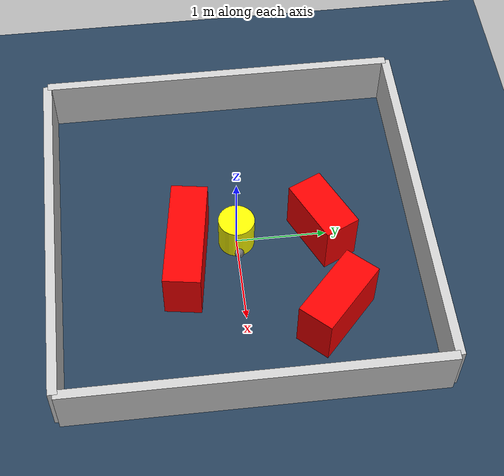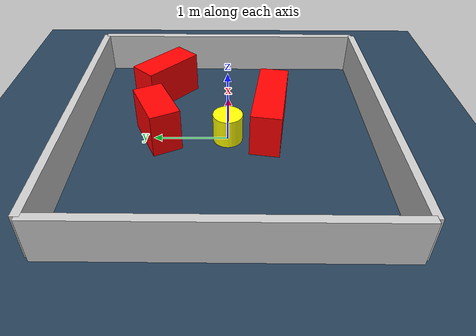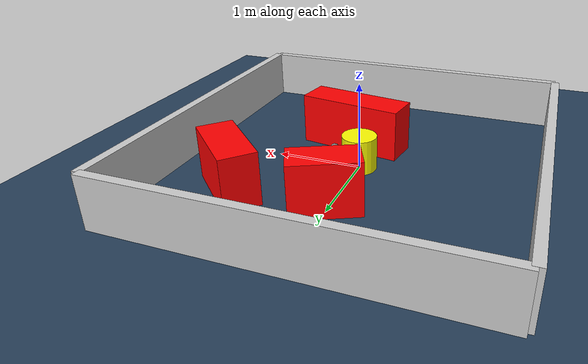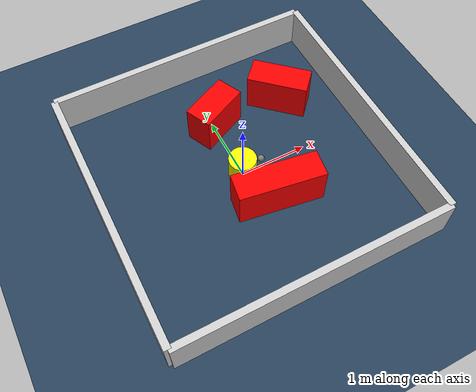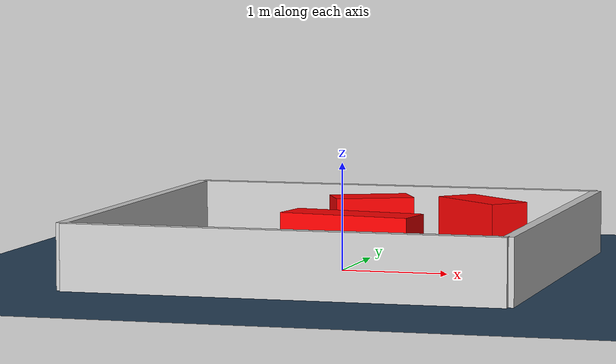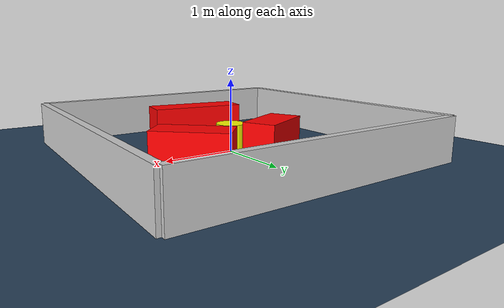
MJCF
<?xml version="1.0" ?>
<mujoco model="generated_environment">
  <option timestep="0.01" integrator="RK4" cone="elliptic"/>
  <default>
    <geom density="1"/>
  </default>
  <asset>
    <texture builtin="gradient" height="3072" rgb1="0.3 0.5 0.7" rgb2="0 0 0" type="skybox" width="512"/>
    <texture builtin="checker" height="300" mark="edge" markrgb="0.8 0.8 0.8" name="groundplane" rgb1="0.2 0.3 0.4" rgb2="0.1 0.2 0.3" type="2d" width="300"/>
    <material name="groundplane" reflectance="0.2" texrepeat="5 5" texture="groundplane" texuniform="true"/>
    <material name="robot" rgba="0.0 1.0 0.0 1"/>
  </asset>
  <worldbody>
    <light dir="0 0 -1" directional="true" pos="0 0 1.5"/>
    <geom condim="4" friction="1.0 0.005 0.001" material="groundplane" name="floor" size="0 0 0.05" type="plane"/>
    <body name="walls">
      <geom name="wall_1" condim="4" pos="-2.0 0.0 0.3" rgba="0.800000011920929 0.800000011920929 0.800000011920929 1.0" size="0.05 2.0 0.3" type="box"/>
      <geom name="wall_2" condim="4" pos="2.0 0.0 0.3" rgba="0.800000011920929 0.800000011920929 0.800000011920929 1.0" size="0.05 2.0 0.3" type="box"/>
      <geom name="wall_3" condim="4" pos="0.0 -2.0 0.3" rgba="0.800000011920929 0.800000011920929 0.800000011920929 1.0" size="2.0 0.05 0.3" type="box"/>
      <geom name="wall_4" condim="4" pos="0.0 2.0 0.3" rgba="0.800000011920929 0.800000011920929 0.800000011920929 1.0" size="2.0 0.05 0.3" type="box"/>
    </body>
    <body name="robot">
      <joint name="joint_x" type="slide" pos="0 0 0" axis="1 0 0"/>
      <joint name="joint_y" type="slide" pos="0 0 0" axis="0 1 0"/>
      <geom name="robot" type="sphere" pos="0.3 0.0 0.2" size="0.05" mass="5." friction="1.0 0.005 0.0001" condim="4" rgba="0.5 0.5 0.5 1.0"/>
      <site name="sensor_ball"/>
    </body>
    <body name="obstacle_movable_1">
      <geom name="obstacle_movable_1" condim="4" pos="0.0 0.0 0.2" euler="0 0 0.0" friction="1.0 0.005 0.001" rgba="1.0 1.0 0.0 1.0" size="0.2 0.2 0.0" type="cylinder" mass="0.1"/>
      <joint type="free"/>
    </body>
    <body name="obstacle_2_static">
      <geom name="obstacle_2_static" condim="4" pos="0.24397534750956362 -0.5697324823584691 0.3" euler="0 0 351.23516383407235" friction="1.0 0.005 0.001" rgba="1 0 0 1" size="0.6186898231620686 0.2 0.3" type="box"/>
    </body>
    <body name="obstacle_3_static">
      <geom name="obstacle_3_static" condim="4" pos="0.029304616215838575 0.9410921765801417 0.3" euler="0 0 25.56558504648827" friction="1.0 0.005 0.001" rgba="1 0 0 1" size="0.37384648044406754 0.2 0.3" type="box"/>
    </body>
    <body name="obstacle_4_static">
      <geom name="obstacle_4_static" condim="4" pos="1.1128705477789094 0.9394012721236569 0.3" euler="0 0 317.31477038216644" friction="1.0 0.005 0.001" rgba="1 0 0 1" size="0.4442754684807348 0.2 0.3" type="box"/>
    </body>
  </worldbody>
  <actuator>
    <motor name="actuator_x" joint="joint_x" gear="1" ctrlrange="-1 1"/>
    <motor name="actuator_y" joint="joint_y" gear="1" ctrlrange="-1 1"/>
  </actuator>
</mujoco>
